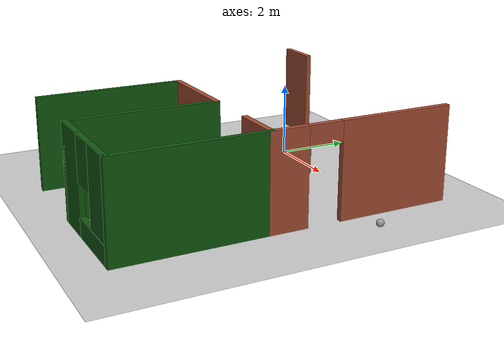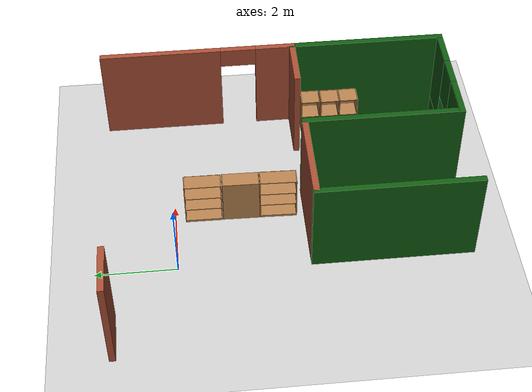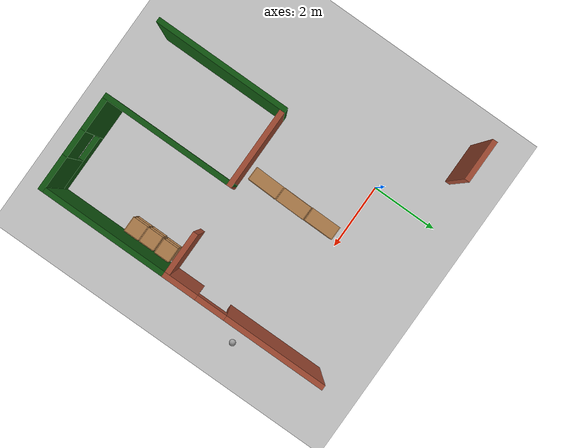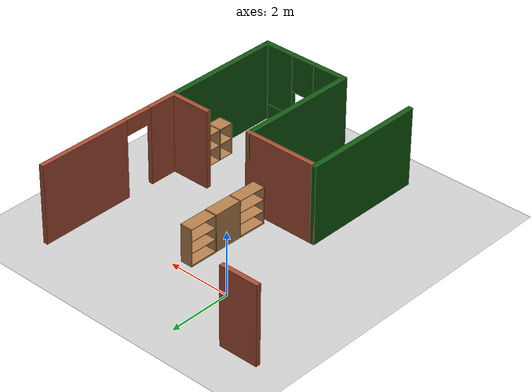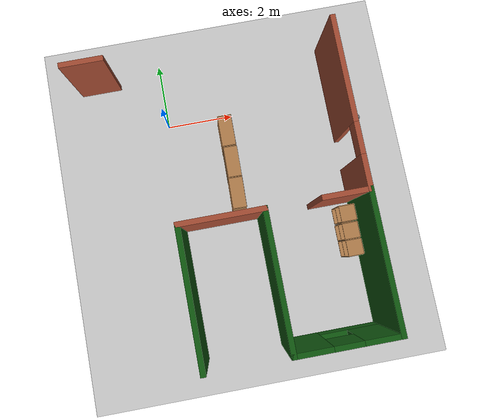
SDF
<sdf version="1.6">
 <world name="default">
  <model name="ground_plane">
   <static>1</static>
   <link name="link">
    <collision name="collision">
     <geometry><plane><normal>0 0 1</normal><size>100 100</size></plane></geometry>
     <surface>
      <contact><collide_bitmask>65535</collide_bitmask></contact>
      <friction><ode><mu>100</mu><mu2>50</mu2></ode></friction>
     </surface>
    </collision>
    <visual name="visual">
     <cast_shadows>0</cast_shadows>
     <geometry><plane><normal>0 0 1</normal><size>100 100</size></plane></geometry>
     <material>
      <script><uri>file://media/materials/scripts/gazebo.material</uri><name>Gazebo/Grey</name></script>
     </material>
    </visual>
   </link>
  </model>
  <model name="apartment">
   <link name="Wall_1">
    <pose>-0.489182 -4.86942 0 0 -0 1.5708</pose>
    <visual name="Wall_1_Visual">
     <pose>0 0 1.25 0 -0 0</pose>
     <geometry><box><size>4 0.15 2.5</size></box></geometry>
     <material>
      <script><uri>file://media/materials/scripts/gazebo.material</uri><name>Gazebo/Grey</name></script>
      <ambient>0.0627451 0.352941 0.0627451 1</ambient>
     </material>
     <meta><layer>0</layer></meta>
    </visual>
    <collision name="Wall_1_Collision">
     <pose>0 0 1.25 0 -0 0</pose>
     <geometry><box><size>4 0.15 2.5</size></box></geometry>
     <surface>
      <friction>
       <ode><mu>1</mu><mu2>1</mu2><fdir1>0 0 0</fdir1><slip1>0</slip1><slip2>0</slip2></ode>
       <torsional>
        <coefficient>1</coefficient>
        <patch_radius>0</patch_radius>
        <surface_radius>0</surface_radius>
        <use_patch_radius>1</use_patch_radius>
        <ode><slip>0</slip></ode>
       </torsional>
      </friction>
      <bounce><restitution_coefficient>0</restitution_coefficient><threshold>1e+06</threshold></bounce>
      <contact>
       <collide_without_contact>0</collide_without_contact>
       <collide_without_contact_bitmask>1</collide_without_contact_bitmask>
       <collide_bitmask>1</collide_bitmask>
       <ode>
        <soft_cfm>0</soft_cfm>
        <soft_erp>0.2</soft_erp>
        <kp>1e+13</kp>
        <kd>1</kd>
        <max_vel>0.01</max_vel>
        <min_depth>0</min_depth>
       </ode>
       <bullet>
        <split_impulse>1</split_impulse>
        <split_impulse_penetration_threshold>-0.01</split_impulse_penetration_threshold>
        <soft_cfm>0</soft_cfm>
        <soft_erp>0.2</soft_erp>
        <kp>1e+13</kp>
        <kd>1</kd>
       </bullet>
      </contact>
     </surface>
    </collision>
   </link>
   <link name="Wall_13">
    <pose>4.71082 -0.519415 0 0 -0 1.5708</pose>
    <visual name="Wall_13_Visual_0">
     <pose>-1.98617 0 1.25 0 -0 0</pose>
     <geometry><box><size>1.02765 0.15 2.5</size></box></geometry>
     <material>
      <script><uri>file://media/materials/scripts/gazebo.material</uri><name>Gazebo/Bricks</name></script>
      <ambient>1 1 1 1</ambient>
     </material>
     <meta><layer>0</layer></meta>
    </visual>
    <visual name="Wall_13_Visual_1">
     <pose>0.963826 0 1.25 0 -0 0</pose>
     <geometry><box><size>3.07235 0.15 2.5</size></box></geometry>
     <material>
      <script><uri>file://media/materials/scripts/gazebo.material</uri><name>Gazebo/Bricks</name></script>
      <ambient>1 1 1 1</ambient>
     </material>
     <meta><layer>0</layer></meta>
    </visual>
    <visual name="Wall_13_Visual_2">
     <pose>-1.02235 0 2.25 0 -0 0</pose>
     <geometry><box><size>0.9 0.15 0.5</size></box></geometry>
     <material>
      <script><uri>file://media/materials/scripts/gazebo.material</uri><name>Gazebo/Bricks</name></script>
      <ambient>1 1 1 1</ambient>
     </material>
     <meta><layer>0</layer></meta>
    </visual>
    <collision name="Wall_13_Collision_0">
     <pose>-1.98617 0 1.25 0 -0 0</pose>
     <geometry><box><size>1.02765 0.15 2.5</size></box></geometry>
     <surface>
      <friction>
       <ode><mu>1</mu><mu2>1</mu2><fdir1>0 0 0</fdir1><slip1>0</slip1><slip2>0</slip2></ode>
       <torsional>
        <coefficient>1</coefficient>
        <patch_radius>0</patch_radius>
        <surface_radius>0</surface_radius>
        <use_patch_radius>1</use_patch_radius>
        <ode><slip>0</slip></ode>
       </torsional>
      </friction>
      <bounce><restitution_coefficient>0</restitution_coefficient><threshold>1e+06</threshold></bounce>
      <contact>
       <collide_without_contact>0</collide_without_contact>
       <collide_without_contact_bitmask>1</collide_without_contact_bitmask>
       <collide_bitmask>1</collide_bitmask>
       <ode>
        <soft_cfm>0</soft_cfm>
        <soft_erp>0.2</soft_erp>
        <kp>1e+13</kp>
        <kd>1</kd>
        <max_vel>0.01</max_vel>
        <min_depth>0</min_depth>
       </ode>
       <bullet>
        <split_impulse>1</split_impulse>
        <split_impulse_penetration_threshold>-0.01</split_impulse_penetration_threshold>
        <soft_cfm>0</soft_cfm>
        <soft_erp>0.2</soft_erp>
        <kp>1e+13</kp>
        <kd>1</kd>
       </bullet>
      </contact>
     </surface>
    </collision>
    <collision name="Wall_13_Collision_1">
     <pose>0.963826 0 1.25 0 -0 0</pose>
     <geometry><box><size>3.07235 0.15 2.5</size></box></geometry>
     <surface>
      <friction>
       <ode><mu>1</mu><mu2>1</mu2><fdir1>0 0 0</fdir1><slip1>0</slip1><slip2>0</slip2></ode>
       <torsional>
        <coefficient>1</coefficient>
        <patch_radius>0</patch_radius>
        <surface_radius>0</surface_radius>
        <use_patch_radius>1</use_patch_radius>
        <ode><slip>0</slip></ode>
       </torsional>
      </friction>
      <bounce><restitution_coefficient>0</restitution_coefficient><threshold>1e+06</threshold></bounce>
      <contact>
       <collide_without_contact>0</collide_without_contact>
       <collide_without_contact_bitmask>1</collide_without_contact_bitmask>
       <collide_bitmask>1</collide_bitmask>
       <ode>
        <soft_cfm>0</soft_cfm>
        <soft_erp>0.2</soft_erp>
        <kp>1e+13</kp>
        <kd>1</kd>
        <max_vel>0.01</max_vel>
        <min_depth>0</min_depth>
       </ode>
       <bullet>
        <split_impulse>1</split_impulse>
        <split_impulse_penetration_threshold>-0.01</split_impulse_penetration_threshold>
        <soft_cfm>0</soft_cfm>
        <soft_erp>0.2</soft_erp>
        <kp>1e+13</kp>
        <kd>1</kd>
       </bullet>
      </contact>
     </surface>
    </collision>
    <collision name="Wall_13_Collision_2">
     <pose>-1.02235 0 2.25 0 -0 0</pose>
     <geometry><box><size>0.9 0.15 0.5</size></box></geometry>
     <surface>
      <friction>
       <ode><mu>1</mu><mu2>1</mu2><fdir1>0 0 0</fdir1><slip1>0</slip1><slip2>0</slip2></ode>
       <torsional>
        <coefficient>1</coefficient>
        <patch_radius>0</patch_radius>
        <surface_radius>0</surface_radius>
        <use_patch_radius>1</use_patch_radius>
        <ode><slip>0</slip></ode>
       </torsional>
      </friction>
      <bounce><restitution_coefficient>0</restitution_coefficient><threshold>1e+06</threshold></bounce>
      <contact>
       <collide_without_contact>0</collide_without_contact>
       <collide_without_contact_bitmask>1</collide_without_contact_bitmask>
       <collide_bitmask>1</collide_bitmask>
       <ode>
        <soft_cfm>0</soft_cfm>
        <soft_erp>0.2</soft_erp>
        <kp>1e+13</kp>
        <kd>1</kd>
        <max_vel>0.01</max_vel>
        <min_depth>0</min_depth>
       </ode>
       <bullet>
        <split_impulse>1</split_impulse>
        <split_impulse_penetration_threshold>-0.01</split_impulse_penetration_threshold>
        <soft_cfm>0</soft_cfm>
        <soft_erp>0.2</soft_erp>
        <kp>1e+13</kp>
        <kd>1</kd>
       </bullet>
      </contact>
     </surface>
    </collision>
   </link>
   <link name="Wall_2">
    <pose>0.685818 -2.94442 0 0 -0 0</pose>
    <visual name="Wall_2_Visual">
     <pose>0 0 1.25 0 -0 0</pose>
     <geometry><box><size>2.5 0.15 2.5</size></box></geometry>
     <material>
      <script><uri>file://media/materials/scripts/gazebo.material</uri><name>Gazebo/Bricks</name></script>
      <ambient>1 1 1 1</ambient>
     </material>
     <meta><layer>0</layer></meta>
    </visual>
    <collision name="Wall_2_Collision">
     <pose>0 0 1.25 0 -0 0</pose>
     <geometry><box><size>2.5 0.15 2.5</size></box></geometry>
     <surface>
      <friction>
       <ode><mu>1</mu><mu2>1</mu2><fdir1>0 0 0</fdir1><slip1>0</slip1><slip2>0</slip2></ode>
       <torsional>
        <coefficient>1</coefficient>
        <patch_radius>0</patch_radius>
        <surface_radius>0</surface_radius>
        <use_patch_radius>1</use_patch_radius>
        <ode><slip>0</slip></ode>
       </torsional>
      </friction>
      <bounce><restitution_coefficient>0</restitution_coefficient><threshold>1e+06</threshold></bounce>
      <contact>
       <collide_without_contact>0</collide_without_contact>
       <collide_without_contact_bitmask>1</collide_without_contact_bitmask>
       <collide_bitmask>1</collide_bitmask>
       <ode>
        <soft_cfm>0</soft_cfm>
        <soft_erp>0.2</soft_erp>
        <kp>1e+13</kp>
        <kd>1</kd>
        <max_vel>0.01</max_vel>
        <min_depth>0</min_depth>
       </ode>
       <bullet>
        <split_impulse>1</split_impulse>
        <split_impulse_penetration_threshold>-0.01</split_impulse_penetration_threshold>
        <soft_cfm>0</soft_cfm>
        <soft_erp>0.2</soft_erp>
        <kp>1e+13</kp>
        <kd>1</kd>
       </bullet>
      </contact>
     </surface>
    </collision>
   </link>
   <link name="Wall_3">
    <pose>1.86082 -4.86942 0 0 0 -1.5708</pose>
    <visual name="Wall_3_Visual">
     <pose>0 0 1.25 0 -0 0</pose>
     <geometry><box><size>4 0.15 2.5</size></box></geometry>
     <material>
      <script><uri>file://media/materials/scripts/gazebo.material</uri><name>Gazebo/Grey</name></script>
      <ambient>0.0627451 0.345098 0.0627451 1</ambient>
     </material>
     <meta><layer>0</layer></meta>
    </visual>
    <collision name="Wall_3_Collision">
     <pose>0 0 1.25 0 -0 0</pose>
     <geometry><box><size>4 0.15 2.5</size></box></geometry>
     <surface>
      <friction>
       <ode><mu>1</mu><mu2>1</mu2><fdir1>0 0 0</fdir1><slip1>0</slip1><slip2>0</slip2></ode>
       <torsional>
        <coefficient>1</coefficient>
        <patch_radius>0</patch_radius>
        <surface_radius>0</surface_radius>
        <use_patch_radius>1</use_patch_radius>
        <ode><slip>0</slip></ode>
       </torsional>
      </friction>
      <bounce><restitution_coefficient>0</restitution_coefficient><threshold>1e+06</threshold></bounce>
      <contact>
       <collide_without_contact>0</collide_without_contact>
       <collide_without_contact_bitmask>1</collide_without_contact_bitmask>
       <collide_bitmask>1</collide_bitmask>
       <ode>
        <soft_cfm>0</soft_cfm>
        <soft_erp>0.2</soft_erp>
        <kp>1e+13</kp>
        <kd>1</kd>
        <max_vel>0.01</max_vel>
        <min_depth>0</min_depth>
       </ode>
       <bullet>
        <split_impulse>1</split_impulse>
        <split_impulse_penetration_threshold>-0.01</split_impulse_penetration_threshold>
        <soft_cfm>0</soft_cfm>
        <soft_erp>0.2</soft_erp>
        <kp>1e+13</kp>
        <kd>1</kd>
       </bullet>
      </contact>
     </surface>
    </collision>
   </link>
   <link name="Wall_4">
    <pose>3.28582 -6.79442 0 0 -0 0</pose>
    <visual name="Wall_4_Visual_0">
     <pose>-0.94186 0 1.25 0 -0 0</pose>
     <geometry><box><size>1.11628 0.15 2.5</size></box></geometry>
     <material>
      <script><uri>file://media/materials/scripts/gazebo.material</uri><name>Gazebo/Grey</name></script>
      <ambient>0.0627451 0.345098 0.0627451 1</ambient>
     </material>
     <meta><layer>0</layer></meta>
    </visual>
    <visual name="Wall_4_Visual_1">
     <pose>0.55814 0 0.25 0 -0 0</pose>
     <geometry><box><size>1.88372 0.15 0.5</size></box></geometry>
     <material>
      <script><uri>file://media/materials/scripts/gazebo.material</uri><name>Gazebo/Grey</name></script>
      <ambient>0.0627451 0.345098 0.0627451 1</ambient>
     </material>
     <meta><layer>0</layer></meta>
    </visual>
    <visual name="Wall_4_Visual_2">
     <pose>0.95814 0 1.5 0 -0 0</pose>
     <geometry><box><size>1.08372 0.15 2</size></box></geometry>
     <material>
      <script><uri>file://media/materials/scripts/gazebo.material</uri><name>Gazebo/Grey</name></script>
      <ambient>0.0627451 0.345098 0.0627451 1</ambient>
     </material>
     <meta><layer>0</layer></meta>
    </visual>
    <visual name="Wall_4_Visual_3">
     <pose>0.016281 0 1.9 0 -0 0</pose>
     <geometry><box><size>0.8 0.15 1.2</size></box></geometry>
     <material>
      <script><uri>file://media/materials/scripts/gazebo.material</uri><name>Gazebo/Grey</name></script>
      <ambient>0.0627451 0.345098 0.0627451 1</ambient>
     </material>
     <meta><layer>0</layer></meta>
    </visual>
    <collision name="Wall_4_Collision_0">
     <pose>-0.94186 0 1.25 0 -0 0</pose>
     <geometry><box><size>1.11628 0.15 2.5</size></box></geometry>
     <surface>
      <friction>
       <ode><mu>1</mu><mu2>1</mu2><fdir1>0 0 0</fdir1><slip1>0</slip1><slip2>0</slip2></ode>
       <torsional>
        <coefficient>1</coefficient>
        <patch_radius>0</patch_radius>
        <surface_radius>0</surface_radius>
        <use_patch_radius>1</use_patch_radius>
        <ode><slip>0</slip></ode>
       </torsional>
      </friction>
      <bounce><restitution_coefficient>0</restitution_coefficient><threshold>1e+06</threshold></bounce>
      <contact>
       <collide_without_contact>0</collide_without_contact>
       <collide_without_contact_bitmask>1</collide_without_contact_bitmask>
       <collide_bitmask>1</collide_bitmask>
       <ode>
        <soft_cfm>0</soft_cfm>
        <soft_erp>0.2</soft_erp>
        <kp>1e+13</kp>
        <kd>1</kd>
        <max_vel>0.01</max_vel>
        <min_depth>0</min_depth>
       </ode>
       <bullet>
        <split_impulse>1</split_impulse>
        <split_impulse_penetration_threshold>-0.01</split_impulse_penetration_threshold>
        <soft_cfm>0</soft_cfm>
        <soft_erp>0.2</soft_erp>
        <kp>1e+13</kp>
        <kd>1</kd>
       </bullet>
      </contact>
     </surface>
    </collision>
    <collision name="Wall_4_Collision_1">
     <pose>0.55814 0 0.25 0 -0 0</pose>
     <geometry><box><size>1.88372 0.15 0.5</size></box></geometry>
     <surface>
      <friction>
       <ode><mu>1</mu><mu2>1</mu2><fdir1>0 0 0</fdir1><slip1>0</slip1><slip2>0</slip2></ode>
       <torsional>
        <coefficient>1</coefficient>
        <patch_radius>0</patch_radius>
        <surface_radius>0</surface_radius>
        <use_patch_radius>1</use_patch_radius>
        <ode><slip>0</slip></ode>
       </torsional>
      </friction>
      <bounce><restitution_coefficient>0</restitution_coefficient><threshold>1e+06</threshold></bounce>
      <contact>
       <collide_without_contact>0</collide_without_contact>
       <collide_without_contact_bitmask>1</collide_without_contact_bitmask>
       <collide_bitmask>1</collide_bitmask>
       <ode>
        <soft_cfm>0</soft_cfm>
        <soft_erp>0.2</soft_erp>
        <kp>1e+13</kp>
        <kd>1</kd>
        <max_vel>0.01</max_vel>
        <min_depth>0</min_depth>
       </ode>
       <bullet>
        <split_impulse>1</split_impulse>
        <split_impulse_penetration_threshold>-0.01</split_impulse_penetration_threshold>
        <soft_cfm>0</soft_cfm>
        <soft_erp>0.2</soft_erp>
        <kp>1e+13</kp>
        <kd>1</kd>
       </bullet>
      </contact>
     </surface>
    </collision>
    <collision name="Wall_4_Collision_2">
     <pose>0.95814 0 1.5 0 -0 0</pose>
     <geometry><box><size>1.08372 0.15 2</size></box></geometry>
     <surface>
      <friction>
       <ode><mu>1</mu><mu2>1</mu2><fdir1>0 0 0</fdir1><slip1>0</slip1><slip2>0</slip2></ode>
       <torsional>
        <coefficient>1</coefficient>
        <patch_radius>0</patch_radius>
        <surface_radius>0</surface_radius>
        <use_patch_radius>1</use_patch_radius>
        <ode><slip>0</slip></ode>
       </torsional>
      </friction>
      <bounce><restitution_coefficient>0</restitution_coefficient><threshold>1e+06</threshold></bounce>
      <contact>
       <collide_without_contact>0</collide_without_contact>
       <collide_without_contact_bitmask>1</collide_without_contact_bitmask>
       <collide_bitmask>1</collide_bitmask>
       <ode>
        <soft_cfm>0</soft_cfm>
        <soft_erp>0.2</soft_erp>
        <kp>1e+13</kp>
        <kd>1</kd>
        <max_vel>0.01</max_vel>
        <min_depth>0</min_depth>
       </ode>
       <bullet>
        <split_impulse>1</split_impulse>
        <split_impulse_penetration_threshold>-0.01</split_impulse_penetration_threshold>
        <soft_cfm>0</soft_cfm>
        <soft_erp>0.2</soft_erp>
        <kp>1e+13</kp>
        <kd>1</kd>
       </bullet>
      </contact>
     </surface>
    </collision>
    <collision name="Wall_4_Collision_3">
     <pose>0.016281 0 1.9 0 -0 0</pose>
     <geometry><box><size>0.8 0.15 1.2</size></box></geometry>
     <surface>
      <friction>
       <ode><mu>1</mu><mu2>1</mu2><fdir1>0 0 0</fdir1><slip1>0</slip1><slip2>0</slip2></ode>
       <torsional>
        <coefficient>1</coefficient>
        <patch_radius>0</patch_radius>
        <surface_radius>0</surface_radius>
        <use_patch_radius>1</use_patch_radius>
        <ode><slip>0</slip></ode>
       </torsional>
      </friction>
      <bounce><restitution_coefficient>0</restitution_coefficient><threshold>1e+06</threshold></bounce>
      <contact>
       <collide_without_contact>0</collide_without_contact>
       <collide_without_contact_bitmask>1</collide_without_contact_bitmask>
       <collide_bitmask>1</collide_bitmask>
       <ode>
        <soft_cfm>0</soft_cfm>
        <soft_erp>0.2</soft_erp>
        <kp>1e+13</kp>
        <kd>1</kd>
        <max_vel>0.01</max_vel>
        <min_depth>0</min_depth>
       </ode>
       <bullet>
        <split_impulse>1</split_impulse>
        <split_impulse_penetration_threshold>-0.01</split_impulse_penetration_threshold>
        <soft_cfm>0</soft_cfm>
        <soft_erp>0.2</soft_erp>
        <kp>1e+13</kp>
        <kd>1</kd>
       </bullet>
      </contact>
     </surface>
    </collision>
   </link>
   <link name="Wall_43">
    <pose>-2.31056 1.9022 0 0 -0 3.14159</pose>
    <inertial>
     <inertia><ixx>0</ixx><ixy>0</ixy><ixz>0</ixz><iyy>0</iyy><iyz>0</iyz><izz>0</izz></inertia>
     <mass>0</mass>
    </inertial>
    <visual name="Wall_43_Visual">
     <pose>0 0 1.25 0 -0 0</pose>
     <geometry><box><size>1.24418 0.15 2.5</size></box></geometry>
     <material>
      <script><uri>file://media/materials/scripts/gazebo.material</uri><name>Gazebo/Bricks</name></script>
      <ambient>1 1 1 1</ambient>
     </material>
     <meta><layer>0</layer></meta>
    </visual>
    <collision name="Wall_43_Collision">
     <pose>0 0 1.25 0 -0 0</pose>
     <geometry><box><size>1.24418 0.15 2.5</size></box></geometry>
     <surface>
      <friction>
       <ode><mu>1</mu><mu2>1</mu2><fdir1>0 0 0</fdir1><slip1>0</slip1><slip2>0</slip2></ode>
       <torsional>
        <coefficient>1</coefficient>
        <patch_radius>0</patch_radius>
        <surface_radius>0</surface_radius>
        <use_patch_radius>1</use_patch_radius>
        <ode><slip>0</slip></ode>
       </torsional>
      </friction>
      <bounce><restitution_coefficient>0</restitution_coefficient><threshold>1e+06</threshold></bounce>
      <contact>
       <collide_without_contact>0</collide_without_contact>
       <collide_without_contact_bitmask>1</collide_without_contact_bitmask>
       <collide_bitmask>1</collide_bitmask>
       <ode>
        <soft_cfm>0</soft_cfm>
        <soft_erp>0.2</soft_erp>
        <kp>1e+13</kp>
        <kd>1</kd>
        <max_vel>0.01</max_vel>
        <min_depth>0</min_depth>
       </ode>
       <bullet>
        <split_impulse>1</split_impulse>
        <split_impulse_penetration_threshold>-0.01</split_impulse_penetration_threshold>
        <soft_cfm>0</soft_cfm>
        <soft_erp>0.2</soft_erp>
        <kp>1e+13</kp>
        <kd>1</kd>
       </bullet>
      </contact>
     </surface>
    </collision>
   </link>
   <link name="Wall_5">
    <pose>4.71082 -4.86942 0 0 -0 1.5708</pose>
    <visual name="Wall_5_Visual">
     <pose>0 0 1.25 0 -0 0</pose>
     <geometry><box><size>4 0.15 2.5</size></box></geometry>
     <material>
      <script><uri>file://media/materials/scripts/gazebo.material</uri><name>Gazebo/Grey</name></script>
      <ambient>0.0627451 0.345098 0.0627451 1</ambient>
     </material>
     <meta><layer>0</layer></meta>
    </visual>
    <collision name="Wall_5_Collision">
     <pose>0 0 1.25 0 -0 0</pose>
     <geometry><box><size>4 0.15 2.5</size></box></geometry>
     <surface>
      <friction>
       <ode><mu>1</mu><mu2>1</mu2><fdir1>0 0 0</fdir1><slip1>0</slip1><slip2>0</slip2></ode>
       <torsional>
        <coefficient>1</coefficient>
        <patch_radius>0</patch_radius>
        <surface_radius>0</surface_radius>
        <use_patch_radius>1</use_patch_radius>
        <ode><slip>0</slip></ode>
       </torsional>
      </friction>
      <bounce><restitution_coefficient>0</restitution_coefficient><threshold>1e+06</threshold></bounce>
      <contact>
       <collide_without_contact>0</collide_without_contact>
       <collide_without_contact_bitmask>1</collide_without_contact_bitmask>
       <collide_bitmask>1</collide_bitmask>
       <ode>
        <soft_cfm>0</soft_cfm>
        <soft_erp>0.2</soft_erp>
        <kp>1e+13</kp>
        <kd>1</kd>
        <max_vel>0.01</max_vel>
        <min_depth>0</min_depth>
       </ode>
       <bullet>
        <split_impulse>1</split_impulse>
        <split_impulse_penetration_threshold>-0.01</split_impulse_penetration_threshold>
        <soft_cfm>0</soft_cfm>
        <soft_erp>0.2</soft_erp>
        <kp>1e+13</kp>
        <kd>1</kd>
       </bullet>
      </contact>
     </surface>
    </collision>
   </link>
   <link name="Wall_6">
    <pose>4.0118 -2.94442 0 0 -0 3.14159</pose>
    <inertial>
     <inertia><ixx>0</ixx><ixy>0</ixy><ixz>0</ixz><iyy>0</iyy><iyz>0</iyz><izz>0</izz></inertia>
     <mass>0</mass>
    </inertial>
    <visual name="Wall_6_Visual">
     <pose>0 0 1.25 0 -0 0</pose>
     <geometry><box><size>1.26058 0.15 2.5</size></box></geometry>
     <material>
      <script><uri>file://media/materials/scripts/gazebo.material</uri><name>Gazebo/Bricks</name></script>
      <ambient>1 1 1 1</ambient>
     </material>
     <meta><layer>0</layer></meta>
    </visual>
    <collision name="Wall_6_Collision">
     <pose>0 0 1.25 0 -0 0</pose>
     <geometry><box><size>1.26058 0.15 2.5</size></box></geometry>
     <surface>
      <friction>
       <ode><mu>1</mu><mu2>1</mu2><fdir1>0 0 0</fdir1><slip1>0</slip1><slip2>0</slip2></ode>
       <torsional>
        <coefficient>1</coefficient>
        <patch_radius>0</patch_radius>
        <surface_radius>0</surface_radius>
        <use_patch_radius>1</use_patch_radius>
        <ode><slip>0</slip></ode>
       </torsional>
      </friction>
      <bounce><restitution_coefficient>0</restitution_coefficient><threshold>1e+06</threshold></bounce>
      <contact>
       <collide_without_contact>0</collide_without_contact>
       <collide_without_contact_bitmask>1</collide_without_contact_bitmask>
       <collide_bitmask>1</collide_bitmask>
       <ode>
        <soft_cfm>0</soft_cfm>
        <soft_erp>0.2</soft_erp>
        <kp>1e+13</kp>
        <kd>1</kd>
        <max_vel>0.01</max_vel>
        <min_depth>0</min_depth>
       </ode>
       <bullet>
        <split_impulse>1</split_impulse>
        <split_impulse_penetration_threshold>-0.01</split_impulse_penetration_threshold>
        <soft_cfm>0</soft_cfm>
        <soft_erp>0.2</soft_erp>
        <kp>1e+13</kp>
        <kd>1</kd>
       </bullet>
      </contact>
     </surface>
    </collision>
   </link>
   <static>1</static>
   <pose>0.39963 -0.33144 0 0 -0 0</pose>
  </model>
  <model name="my_ball">
   <link name="link">
    <inertial>
     <mass>1</mass>
     <inertia><ixx>0.1</ixx><ixy>0</ixy><ixz>0</ixz><iyy>0.1</iyy><iyz>0</iyz><izz>0.1</izz></inertia>
    </inertial>
    <visual name="visual">
     <geometry><sphere><radius>0.1</radius></sphere></geometry>
     <material>
      <script><name>Gazebo/Grey</name><uri>file://media/materials/scripts/gazebo.material</uri></script>
      <shader type="vertex"><normal_map>__default__</normal_map></shader>
      <ambient>1 1 1 1</ambient>
      <diffuse>1 1 1 1</diffuse>
      <specular>1 1 1 1</specular>
      <emissive>1 1 1 1</emissive>
     </material>
    </visual>
    <collision name="collision">
     <geometry><sphere><radius>0.1</radius></sphere></geometry>
     <surface>
      <friction>
       <ode><mu>1</mu><mu2>1</mu2><fdir1>0 0 0</fdir1><slip1>0</slip1><slip2>0</slip2></ode>
       <torsional>
        <coefficient>1</coefficient>
        <patch_radius>0</patch_radius>
        <surface_radius>0</surface_radius>
        <use_patch_radius>1</use_patch_radius>
        <ode><slip>0</slip></ode>
       </torsional>
      </friction>
      <bounce><restitution_coefficient>0</restitution_coefficient><threshold>1e+06</threshold></bounce>
      <contact>
       <collide_without_contact>0</collide_without_contact>
       <collide_without_contact_bitmask>1</collide_without_contact_bitmask>
       <collide_bitmask>1</collide_bitmask>
       <ode>
        <soft_cfm>0</soft_cfm>
        <soft_erp>0.2</soft_erp>
        <kp>1e+13</kp>
        <kd>1</kd>
        <max_vel>0.01</max_vel>
        <min_depth>0</min_depth>
       </ode>
       <bullet>
        <split_impulse>1</split_impulse>
        <split_impulse_penetration_threshold>-0.01</split_impulse_penetration_threshold>
        <soft_cfm>0</soft_cfm>
        <soft_erp>0.2</soft_erp>
        <kp>1e+13</kp>
        <kd>1</kd>
       </bullet>
      </contact>
     </surface>
    </collision>
   </link>
   <static>0</static>
   <pose>5.87052 -0.770724 0.1 0 -0 0</pose>
  </model>
  <model name="cabinet">
   <static>1</static>
   <link name="cabinet_bottom_plate">
    <inertial>
     <pose>0 0 -1 0 -0 0</pose>
     <inertia><ixx>2.05</ixx><ixy>0</ixy><ixz>0</ixz><iyy>2.05</iyy><iyz>0</iyz><izz>2.05</izz></inertia>
     <mass>25</mass>
    </inertial>
    <collision name="cabinet_bottom_plate_geom">
     <pose>0 0 0.01 0 -0 0</pose>
     <geometry><box><size>0.45 0.45 0.02</size></box></geometry>
    </collision>
    <visual name="cabinet_bottom_plate_geom_visual">
     <pose>0 0 0.01 0 -0 0</pose>
     <geometry><box><size>0.45 0.45 0.02</size></box></geometry>
     <material>
      <script><uri>file://media/materials/scripts/gazebo.material</uri><name>Gazebo/Wood</name></script>
     </material>
    </visual>
    <collision name="cabinet_bottom_plate_geom_cabinet_back_plate">
     <pose>0.235 0 0.51 0 -0 0</pose>
     <geometry><box><size>0.02 0.45 1.02</size></box></geometry>
    </collision>
    <visual name="cabinet_bottom_plate_geom_cabinet_back_plate_visual">
     <pose>0.235 0 0.51 0 -0 0</pose>
     <geometry><box><size>0.02 0.45 1.02</size></box></geometry>
     <material>
      <script><uri>file://media/materials/scripts/gazebo.material</uri><name>Gazebo/Wood</name></script>
     </material>
    </visual>
    <collision name="cabinet_bottom_plate_geom_cabinet_left_plate">
     <pose>0 0.235 0.51 0 -0 0</pose>
     <geometry><box><size>0.45 0.02 1.02</size></box></geometry>
    </collision>
    <visual name="cabinet_bottom_plate_geom_cabinet_left_plate_visual">
     <pose>0 0.235 0.51 0 -0 0</pose>
     <geometry><box><size>0.45 0.02 1.02</size></box></geometry>
     <material>
      <script><uri>file://media/materials/scripts/gazebo.material</uri><name>Gazebo/Wood</name></script>
     </material>
    </visual>
    <collision name="cabinet_bottom_plate_geom_cabinet_middle_plate">
     <pose>0 0 0.51 0 -0 0</pose>
     <geometry><box><size>0.45 0.45 0.02</size></box></geometry>
    </collision>
    <visual name="cabinet_bottom_plate_geom_cabinet_middle_plate_visual">
     <pose>0 0 0.51 0 -0 0</pose>
     <geometry><box><size>0.45 0.45 0.02</size></box></geometry>
     <material>
      <script><uri>file://media/materials/scripts/gazebo.material</uri><name>Gazebo/Wood</name></script>
     </material>
    </visual>
    <collision name="cabinet_bottom_plate_geom_cabinet_right_plate">
     <pose>0 -0.235 0.51 0 -0 0</pose>
     <geometry><box><size>0.45 0.02 1.02</size></box></geometry>
    </collision>
    <visual name="cabinet_bottom_plate_geom_cabinet_right_plate_visual">
     <pose>0 -0.235 0.51 0 -0 0</pose>
     <geometry><box><size>0.45 0.02 1.02</size></box></geometry>
     <material>
      <script><uri>file://media/materials/scripts/gazebo.material</uri><name>Gazebo/Wood</name></script>
     </material>
    </visual>
    <collision name="cabinet_bottom_plate_geom_cabinet_top_plate">
     <pose>0 0 1.01 0 -0 0</pose>
     <geometry><box><size>0.45 0.45 0.02</size></box></geometry>
    </collision>
    <visual name="cabinet_bottom_plate_geom_cabinet_top_plate_visual">
     <pose>0 0 1.01 0 -0 0</pose>
     <geometry><box><size>0.45 0.45 0.02</size></box></geometry>
     <material>
      <script><uri>file://media/materials/scripts/gazebo.material</uri><name>Gazebo/Wood</name></script>
     </material>
    </visual>
   </link>
   <pose>4.73115 -3.72419 0 0 -0 0</pose>
  </model>
  <model name="cabinet_0">
   <static>1</static>
   <link name="cabinet_bottom_plate">
    <inertial>
     <pose>0 0 -1 0 -0 0</pose>
     <inertia><ixx>2.05</ixx><ixy>0</ixy><ixz>0</ixz><iyy>2.05</iyy><iyz>0</iyz><izz>2.05</izz></inertia>
     <mass>25</mass>
    </inertial>
    <collision name="cabinet_bottom_plate_geom">
     <pose>0 0 0.01 0 -0 0</pose>
     <geometry><box><size>0.45 0.45 0.02</size></box></geometry>
    </collision>
    <visual name="cabinet_bottom_plate_geom_visual">
     <pose>0 0 0.01 0 -0 0</pose>
     <geometry><box><size>0.45 0.45 0.02</size></box></geometry>
     <material>
      <script><uri>file://media/materials/scripts/gazebo.material</uri><name>Gazebo/Wood</name></script>
     </material>
    </visual>
    <collision name="cabinet_bottom_plate_geom_cabinet_back_plate">
     <pose>0.235 0 0.51 0 -0 0</pose>
     <geometry><box><size>0.02 0.45 1.02</size></box></geometry>
    </collision>
    <visual name="cabinet_bottom_plate_geom_cabinet_back_plate_visual">
     <pose>0.235 0 0.51 0 -0 0</pose>
     <geometry><box><size>0.02 0.45 1.02</size></box></geometry>
     <material>
      <script><uri>file://media/materials/scripts/gazebo.material</uri><name>Gazebo/Wood</name></script>
     </material>
    </visual>
    <collision name="cabinet_bottom_plate_geom_cabinet_left_plate">
     <pose>0 0.235 0.51 0 -0 0</pose>
     <geometry><box><size>0.45 0.02 1.02</size></box></geometry>
    </collision>
    <visual name="cabinet_bottom_plate_geom_cabinet_left_plate_visual">
     <pose>0 0.235 0.51 0 -0 0</pose>
     <geometry><box><size>0.45 0.02 1.02</size></box></geometry>
     <material>
      <script><uri>file://media/materials/scripts/gazebo.material</uri><name>Gazebo/Wood</name></script>
     </material>
    </visual>
    <collision name="cabinet_bottom_plate_geom_cabinet_middle_plate">
     <pose>0 0 0.51 0 -0 0</pose>
     <geometry><box><size>0.45 0.45 0.02</size></box></geometry>
    </collision>
    <visual name="cabinet_bottom_plate_geom_cabinet_middle_plate_visual">
     <pose>0 0 0.51 0 -0 0</pose>
     <geometry><box><size>0.45 0.45 0.02</size></box></geometry>
     <material>
      <script><uri>file://media/materials/scripts/gazebo.material</uri><name>Gazebo/Wood</name></script>
     </material>
    </visual>
    <collision name="cabinet_bottom_plate_geom_cabinet_right_plate">
     <pose>0 -0.235 0.51 0 -0 0</pose>
     <geometry><box><size>0.45 0.02 1.02</size></box></geometry>
    </collision>
    <visual name="cabinet_bottom_plate_geom_cabinet_right_plate_visual">
     <pose>0 -0.235 0.51 0 -0 0</pose>
     <geometry><box><size>0.45 0.02 1.02</size></box></geometry>
     <material>
      <script><uri>file://media/materials/scripts/gazebo.material</uri><name>Gazebo/Wood</name></script>
     </material>
    </visual>
    <collision name="cabinet_bottom_plate_geom_cabinet_top_plate">
     <pose>0 0 1.01 0 -0 0</pose>
     <geometry><box><size>0.45 0.45 0.02</size></box></geometry>
    </collision>
    <visual name="cabinet_bottom_plate_geom_cabinet_top_plate_visual">
     <pose>0 0 1.01 0 -0 0</pose>
     <geometry><box><size>0.45 0.45 0.02</size></box></geometry>
     <material>
      <script><uri>file://media/materials/scripts/gazebo.material</uri><name>Gazebo/Wood</name></script>
     </material>
    </visual>
   </link>
   <pose>4.71897 -4.23777 0 0 -0 0</pose>
  </model>
  <model name="cabinet_1">
   <static>1</static>
   <link name="cabinet_bottom_plate">
    <inertial>
     <pose>0 0 -1 0 -0 0</pose>
     <inertia><ixx>2.05</ixx><ixy>0</ixy><ixz>0</ixz><iyy>2.05</iyy><iyz>0</iyz><izz>2.05</izz></inertia>
     <mass>25</mass>
    </inertial>
    <collision name="cabinet_bottom_plate_geom">
     <pose>0 0 0.01 0 -0 0</pose>
     <geometry><box><size>0.45 0.45 0.02</size></box></geometry>
    </collision>
    <visual name="cabinet_bottom_plate_geom_visual">
     <pose>0 0 0.01 0 -0 0</pose>
     <geometry><box><size>0.45 0.45 0.02</size></box></geometry>
     <material>
      <script><uri>file://media/materials/scripts/gazebo.material</uri><name>Gazebo/Wood</name></script>
     </material>
    </visual>
    <collision name="cabinet_bottom_plate_geom_cabinet_back_plate">
     <pose>0.235 0 0.51 0 -0 0</pose>
     <geometry><box><size>0.02 0.45 1.02</size></box></geometry>
    </collision>
    <visual name="cabinet_bottom_plate_geom_cabinet_back_plate_visual">
     <pose>0.235 0 0.51 0 -0 0</pose>
     <geometry><box><size>0.02 0.45 1.02</size></box></geometry>
     <material>
      <script><uri>file://media/materials/scripts/gazebo.material</uri><name>Gazebo/Wood</name></script>
     </material>
    </visual>
    <collision name="cabinet_bottom_plate_geom_cabinet_left_plate">
     <pose>0 0.235 0.51 0 -0 0</pose>
     <geometry><box><size>0.45 0.02 1.02</size></box></geometry>
    </collision>
    <visual name="cabinet_bottom_plate_geom_cabinet_left_plate_visual">
     <pose>0 0.235 0.51 0 -0 0</pose>
     <geometry><box><size>0.45 0.02 1.02</size></box></geometry>
     <material>
      <script><uri>file://media/materials/scripts/gazebo.material</uri><name>Gazebo/Wood</name></script>
     </material>
    </visual>
    <collision name="cabinet_bottom_plate_geom_cabinet_middle_plate">
     <pose>0 0 0.51 0 -0 0</pose>
     <geometry><box><size>0.45 0.45 0.02</size></box></geometry>
    </collision>
    <visual name="cabinet_bottom_plate_geom_cabinet_middle_plate_visual">
     <pose>0 0 0.51 0 -0 0</pose>
     <geometry><box><size>0.45 0.45 0.02</size></box></geometry>
     <material>
      <script><uri>file://media/materials/scripts/gazebo.material</uri><name>Gazebo/Wood</name></script>
     </material>
    </visual>
    <collision name="cabinet_bottom_plate_geom_cabinet_right_plate">
     <pose>0 -0.235 0.51 0 -0 0</pose>
     <geometry><box><size>0.45 0.02 1.02</size></box></geometry>
    </collision>
    <visual name="cabinet_bottom_plate_geom_cabinet_right_plate_visual">
     <pose>0 -0.235 0.51 0 -0 0</pose>
     <geometry><box><size>0.45 0.02 1.02</size></box></geometry>
     <material>
      <script><uri>file://media/materials/scripts/gazebo.material</uri><name>Gazebo/Wood</name></script>
     </material>
    </visual>
    <collision name="cabinet_bottom_plate_geom_cabinet_top_plate">
     <pose>0 0 1.01 0 -0 0</pose>
     <geometry><box><size>0.45 0.45 0.02</size></box></geometry>
    </collision>
    <visual name="cabinet_bottom_plate_geom_cabinet_top_plate_visual">
     <pose>0 0 1.01 0 -0 0</pose>
     <geometry><box><size>0.45 0.45 0.02</size></box></geometry>
     <material>
      <script><uri>file://media/materials/scripts/gazebo.material</uri><name>Gazebo/Wood</name></script>
     </material>
    </visual>
   </link>
   <pose>4.72245 -4.73247 0 0 -0 0</pose>
  </model>
  <model name="bookshelf_1">
   <static>1</static>
   <link name="link">
    <inertial><mass>1</mass></inertial>
    <collision name="back">
     <pose>0 0.005 0.6 0 -0 0</pose>
     <geometry><box><size>0.9 0.01 1.2</size></box></geometry>
    </collision>
    <visual name="visual1">
     <pose>0 0.005 0.6 0 -0 0</pose>
     <geometry><box><size>0.9 0.01 1.2</size></box></geometry>
     <material>
      <script><uri>file://media/materials/scripts/gazebo.material</uri><name>Gazebo/Wood</name></script>
     </material>
    </visual>
    <collision name="left_side">
     <pose>0.45 -0.195 0.6 0 -0 0</pose>
     <geometry><box><size>0.02 0.4 1.2</size></box></geometry>
    </collision>
    <visual name="visual2">
     <pose>0.45 -0.195 0.6 0 -0 0</pose>
     <geometry><box><size>0.02 0.4 1.2</size></box></geometry>
     <material>
      <script><uri>file://media/materials/scripts/gazebo.material</uri><name>Gazebo/Wood</name></script>
     </material>
    </visual>
    <collision name="right_side">
     <pose>-0.45 -0.195 0.6 0 -0 0</pose>
     <geometry><box><size>0.02 0.4 1.2</size></box></geometry>
    </collision>
    <visual name="visual3">
     <pose>-0.45 -0.195 0.6 0 -0 0</pose>
     <geometry><box><size>0.02 0.4 1.2</size></box></geometry>
     <material>
      <script><uri>file://media/materials/scripts/gazebo.material</uri><name>Gazebo/Wood</name></script>
     </material>
    </visual>
    <collision name="bottom">
     <pose>0 -0.195 0.03 0 -0 0</pose>
     <geometry><box><size>0.88 0.4 0.06</size></box></geometry>
    </collision>
    <visual name="visual4">
     <pose>0 -0.195 0.03 0 -0 0</pose>
     <geometry><box><size>0.88 0.4 0.06</size></box></geometry>
     <material>
      <script><uri>file://media/materials/scripts/gazebo.material</uri><name>Gazebo/Wood</name></script>
     </material>
    </visual>
    <collision name="top">
     <pose>0 -0.195 1.19 0 -0 0</pose>
     <geometry><box><size>0.88 0.4 0.02</size></box></geometry>
    </collision>
    <visual name="visual5">
     <pose>0 -0.195 1.19 0 -0 0</pose>
     <geometry><box><size>0.88 0.4 0.02</size></box></geometry>
     <material>
      <script><uri>file://media/materials/scripts/gazebo.material</uri><name>Gazebo/Wood</name></script>
     </material>
    </visual>
    <collision name="low_shelf">
     <pose>0 -0.195 0.43 0 -0 0</pose>
     <geometry><box><size>0.88 0.4 0.02</size></box></geometry>
    </collision>
    <visual name="visual6">
     <pose>0 -0.195 0.43 0 -0 0</pose>
     <geometry><box><size>0.88 0.4 0.02</size></box></geometry>
     <material>
      <script><uri>file://media/materials/scripts/gazebo.material</uri><name>Gazebo/Wood</name></script>
     </material>
    </visual>
    <collision name="high_shelf">
     <pose>0 -0.195 0.8 0 -0 0</pose>
     <geometry><box><size>0.88 0.4 0.02</size></box></geometry>
    </collision>
    <visual name="visual7">
     <pose>0 -0.195 0.8 0 -0 0</pose>
     <geometry><box><size>0.88 0.4 0.02</size></box></geometry>
     <material>
      <script><uri>file://media/materials/scripts/gazebo.material</uri><name>Gazebo/Wood</name></script>
     </material>
    </visual>
   </link>
   <pose>1.8809 -2.57787 0 0 -0 -1.5987</pose>
  </model>
  <model name="bookshelf_2">
   <static>1</static>
   <link name="link">
    <inertial><mass>1</mass></inertial>
    <collision name="back">
     <pose>0 0.005 0.6 0 -0 0</pose>
     <geometry><box><size>0.9 0.01 1.2</size></box></geometry>
    </collision>
    <visual name="visual1">
     <pose>0 0.005 0.6 0 -0 0</pose>
     <geometry><box><size>0.9 0.01 1.2</size></box></geometry>
     <material>
      <script><uri>file://media/materials/scripts/gazebo.material</uri><name>Gazebo/Wood</name></script>
     </material>
    </visual>
    <collision name="left_side">
     <pose>0.45 -0.195 0.6 0 -0 0</pose>
     <geometry><box><size>0.02 0.4 1.2</size></box></geometry>
    </collision>
    <visual name="visual2">
     <pose>0.45 -0.195 0.6 0 -0 0</pose>
     <geometry><box><size>0.02 0.4 1.2</size></box></geometry>
     <material>
      <script><uri>file://media/materials/scripts/gazebo.material</uri><name>Gazebo/Wood</name></script>
     </material>
    </visual>
    <collision name="right_side">
     <pose>-0.45 -0.195 0.6 0 -0 0</pose>
     <geometry><box><size>0.02 0.4 1.2</size></box></geometry>
    </collision>
    <visual name="visual3">
     <pose>-0.45 -0.195 0.6 0 -0 0</pose>
     <geometry><box><size>0.02 0.4 1.2</size></box></geometry>
     <material>
      <script><uri>file://media/materials/scripts/gazebo.material</uri><name>Gazebo/Wood</name></script>
     </material>
    </visual>
    <collision name="bottom">
     <pose>0 -0.195 0.03 0 -0 0</pose>
     <geometry><box><size>0.88 0.4 0.06</size></box></geometry>
    </collision>
    <visual name="visual4">
     <pose>0 -0.195 0.03 0 -0 0</pose>
     <geometry><box><size>0.88 0.4 0.06</size></box></geometry>
     <material>
      <script><uri>file://media/materials/scripts/gazebo.material</uri><name>Gazebo/Wood</name></script>
     </material>
    </visual>
    <collision name="top">
     <pose>0 -0.195 1.19 0 -0 0</pose>
     <geometry><box><size>0.88 0.4 0.02</size></box></geometry>
    </collision>
    <visual name="visual5">
     <pose>0 -0.195 1.19 0 -0 0</pose>
     <geometry><box><size>0.88 0.4 0.02</size></box></geometry>
     <material>
      <script><uri>file://media/materials/scripts/gazebo.material</uri><name>Gazebo/Wood</name></script>
     </material>
    </visual>
    <collision name="low_shelf">
     <pose>0 -0.195 0.43 0 -0 0</pose>
     <geometry><box><size>0.88 0.4 0.02</size></box></geometry>
    </collision>
    <visual name="visual6">
     <pose>0 -0.195 0.43 0 -0 0</pose>
     <geometry><box><size>0.88 0.4 0.02</size></box></geometry>
     <material>
      <script><uri>file://media/materials/scripts/gazebo.material</uri><name>Gazebo/Wood</name></script>
     </material>
    </visual>
    <collision name="high_shelf">
     <pose>0 -0.195 0.8 0 -0 0</pose>
     <geometry><box><size>0.88 0.4 0.02</size></box></geometry>
    </collision>
    <visual name="visual7">
     <pose>0 -0.195 0.8 0 -0 0</pose>
     <geometry><box><size>0.88 0.4 0.02</size></box></geometry>
     <material>
      <script><uri>file://media/materials/scripts/gazebo.material</uri><name>Gazebo/Wood</name></script>
     </material>
    </visual>
   </link>
   <pose>1.5132 -1.64373 0 0 -0 1.55287</pose>
  </model>
  <model name="bookshelf_3">
   <static>1</static>
   <link name="link">
    <inertial><mass>1</mass></inertial>
    <collision name="back">
     <pose>0 0.005 0.6 0 -0 0</pose>
     <geometry><box><size>0.9 0.01 1.2</size></box></geometry>
    </collision>
    <visual name="visual1">
     <pose>0 0.005 0.6 0 -0 0</pose>
     <geometry><box><size>0.9 0.01 1.2</size></box></geometry>
     <material>
      <script><uri>file://media/materials/scripts/gazebo.material</uri><name>Gazebo/Wood</name></script>
     </material>
    </visual>
    <collision name="left_side">
     <pose>0.45 -0.195 0.6 0 -0 0</pose>
     <geometry><box><size>0.02 0.4 1.2</size></box></geometry>
    </collision>
    <visual name="visual2">
     <pose>0.45 -0.195 0.6 0 -0 0</pose>
     <geometry><box><size>0.02 0.4 1.2</size></box></geometry>
     <material>
      <script><uri>file://media/materials/scripts/gazebo.material</uri><name>Gazebo/Wood</name></script>
     </material>
    </visual>
    <collision name="right_side">
     <pose>-0.45 -0.195 0.6 0 -0 0</pose>
     <geometry><box><size>0.02 0.4 1.2</size></box></geometry>
    </collision>
    <visual name="visual3">
     <pose>-0.45 -0.195 0.6 0 -0 0</pose>
     <geometry><box><size>0.02 0.4 1.2</size></box></geometry>
     <material>
      <script><uri>file://media/materials/scripts/gazebo.material</uri><name>Gazebo/Wood</name></script>
     </material>
    </visual>
    <collision name="bottom">
     <pose>0 -0.195 0.03 0 -0 0</pose>
     <geometry><box><size>0.88 0.4 0.06</size></box></geometry>
    </collision>
    <visual name="visual4">
     <pose>0 -0.195 0.03 0 -0 0</pose>
     <geometry><box><size>0.88 0.4 0.06</size></box></geometry>
     <material>
      <script><uri>file://media/materials/scripts/gazebo.material</uri><name>Gazebo/Wood</name></script>
     </material>
    </visual>
    <collision name="top">
     <pose>0 -0.195 1.19 0 -0 0</pose>
     <geometry><box><size>0.88 0.4 0.02</size></box></geometry>
    </collision>
    <visual name="visual5">
     <pose>0 -0.195 1.19 0 -0 0</pose>
     <geometry><box><size>0.88 0.4 0.02</size></box></geometry>
     <material>
      <script><uri>file://media/materials/scripts/gazebo.material</uri><name>Gazebo/Wood</name></script>
     </material>
    </visual>
    <collision name="low_shelf">
     <pose>0 -0.195 0.43 0 -0 0</pose>
     <geometry><box><size>0.88 0.4 0.02</size></box></geometry>
    </collision>
    <visual name="visual6">
     <pose>0 -0.195 0.43 0 -0 0</pose>
     <geometry><box><size>0.88 0.4 0.02</size></box></geometry>
     <material>
      <script><uri>file://media/materials/scripts/gazebo.material</uri><name>Gazebo/Wood</name></script>
     </material>
    </visual>
    <collision name="high_shelf">
     <pose>0 -0.195 0.8 0 -0 0</pose>
     <geometry><box><size>0.88 0.4 0.02</size></box></geometry>
    </collision>
    <visual name="visual7">
     <pose>0 -0.195 0.8 0 -0 0</pose>
     <geometry><box><size>0.88 0.4 0.02</size></box></geometry>
     <material>
      <script><uri>file://media/materials/scripts/gazebo.material</uri><name>Gazebo/Wood</name></script>
     </material>
    </visual>
   </link>
   <pose>1.90358 -0.715061 0 0 0 -1.58047</pose>
  </model>
 </world>
</sdf>
